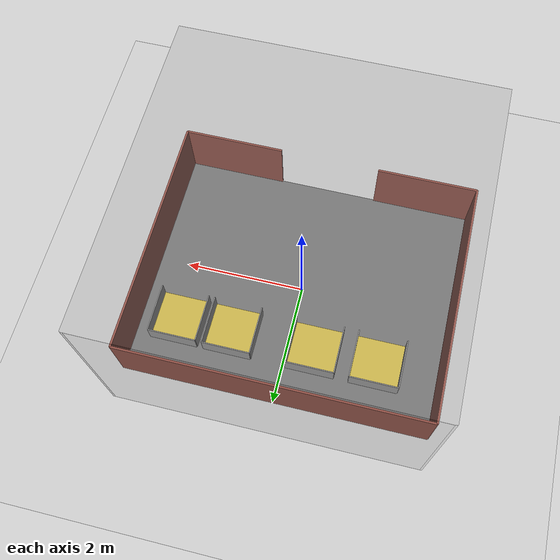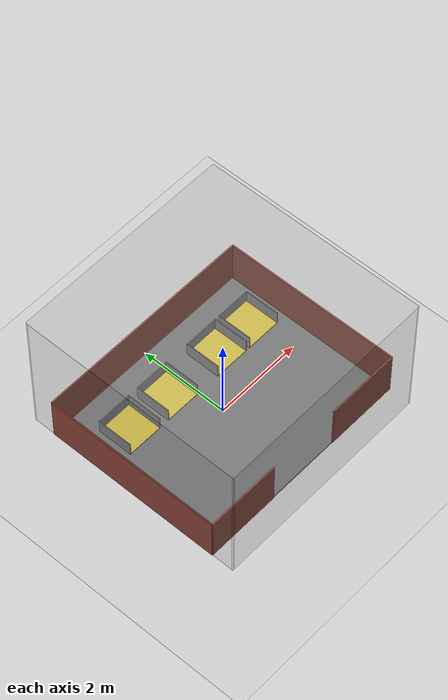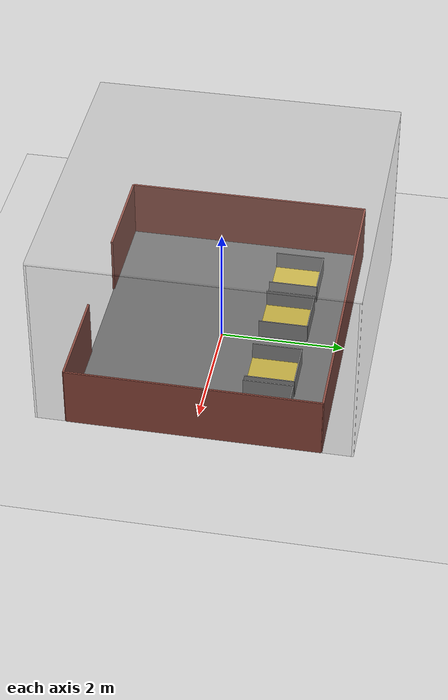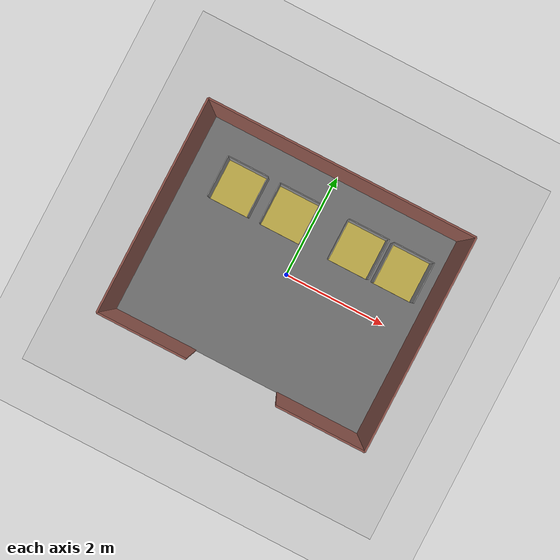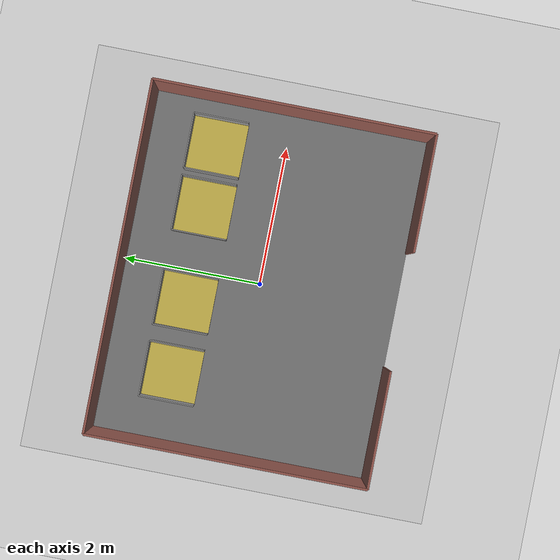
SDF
<sdf version="1.10">
 <world name="default">
  <physics name="1ms" type="ignored">
   <max_step_size>0.001</max_step_size>
   <real_time_factor>1</real_time_factor>
   <real_time_update_rate>1000</real_time_update_rate>
  </physics>
  <plugin name="gz::sim::systems::Buoyancy" filename="gz-sim-buoyancy-system">
   <uniform_fluid_density>0</uniform_fluid_density>
  </plugin>
  <plugin name="gz::sim::systems::Physics" filename="gz-sim-physics-system"/>
  <plugin name="gz::sim::systems::UserCommands" filename="gz-sim-user-commands-system"/>
  <plugin name="gz::sim::systems::SceneBroadcaster" filename="gz-sim-scene-broadcaster-system"/>
  <plugin name="gz::sim::systems::Imu" filename="gz-sim-imu-system"/>
  <plugin name="gz::sim::systems::Sensors" filename="gz-sim-sensors-system">
   <render_engine>ogre2</render_engine>
  </plugin>
  <plugin name="gz::sim::systems::Buoyancy" filename="gz-sim-buoyancy-system">
   <uniform_fluid_density>0</uniform_fluid_density>
  </plugin>
  <plugin name="gz::sim::systems::ParticleEmitter" filename="gz-sim-particle-emitter-system"/>
  <plugin name="gz::sim::systems::Contact" filename="gz-sim-contact-system"/>
  <gravity>0 0 -9.8000000000000007</gravity>
  <magnetic_field>5.5644999999999998e-06 2.2875799999999999e-05 -4.2388400000000002e-05</magnetic_field>
  <atmosphere type="adiabatic"/>
  <scene>
   <ambient>0.400000006 0.400000006 0.400000006 1</ambient>
   <background>0.699999988 0.699999988 0.699999988 1</background>
   <shadows>true</shadows>
  </scene>
  <model name="ground_plane">
   <static>true</static>
   <link name="link">
    <collision name="collision">
     <geometry><plane><normal>0 0 1</normal><size>5 5</size></plane></geometry>
    </collision>
    <visual name="visual">
     <geometry><plane><normal>0 0 1</normal><size>5 5</size></plane></geometry>
     <material>
      <ambient>0.800000012 0.800000012 0.800000012 1</ambient>
      <diffuse>0.800000012 0.800000012 0.800000012 1</diffuse>
      <specular>0.800000012 0.800000012 0.800000012 1</specular>
     </material>
    </visual>
    <inertial>
     <mass>1</mass>
     <inertia><ixx>1</ixx><ixy>0</ixy><ixz>0</ixz><iyy>1</iyy><iyz>0</iyz><izz>1</izz></inertia>
    </inertial>
   </link>
  </model>
  <model name="boundary1">
   <pose>0 2.48333 0.5 0 0 0</pose>
   <static>true</static>
   <link name="body">
    <visual name="body_visual">
     <geometry><box><size>5 0.0333333 5</size></box></geometry>
     <material>
      <ambient>1 0.899999976 0.899999976 0.200000003</ambient>
      <diffuse>0.5 0.5 0.5 0.200000003</diffuse>
     </material>
    </visual>
    <collision name="body_collision"><geometry><box><size>5 0.0333333 1.33333</size></box></geometry></collision>
    <inertial>
     <mass>1</mass>
     <inertia><ixx>1</ixx><ixy>0</ixy><ixz>0</ixz><iyy>1</iyy><iyz>0</iyz><izz>1</izz></inertia>
    </inertial>
   </link>
  </model>
  <model name="boundary2">
   <pose>0 -2.48333 0.5 0 0 0</pose>
   <static>true</static>
   <link name="body">
    <visual name="body_visual">
     <geometry><box><size>5 0.0333333 5</size></box></geometry>
     <material>
      <ambient>1 0.899999976 0.899999976 0.200000003</ambient>
      <diffuse>0.5 0.5 0.5 0.200000003</diffuse>
     </material>
    </visual>
    <collision name="body_collision"><geometry><box><size>5 0.0333333 1.33333</size></box></geometry></collision>
    <inertial>
     <mass>1</mass>
     <inertia><ixx>1</ixx><ixy>0</ixy><ixz>0</ixz><iyy>1</iyy><iyz>0</iyz><izz>1</izz></inertia>
    </inertial>
   </link>
  </model>
  <model name="boundary3">
   <pose>2.48333 0 0.5 0 0 0</pose>
   <static>true</static>
   <link name="body">
    <visual name="body_visual">
     <geometry><box><size>0.0333333 5 5</size></box></geometry>
     <material>
      <ambient>1 0.899999976 0.899999976 0.200000003</ambient>
      <diffuse>0.5 0.5 0.5 0.200000003</diffuse>
     </material>
    </visual>
    <collision name="body_collision"><geometry><box><size>0.0333333 5 1.33333</size></box></geometry></collision>
    <inertial>
     <mass>1</mass>
     <inertia><ixx>1</ixx><ixy>0</ixy><ixz>0</ixz><iyy>1</iyy><iyz>0</iyz><izz>1</izz></inertia>
    </inertial>
   </link>
  </model>
  <model name="boundary4">
   <pose>-2.48333 0 0.5 0 0 0</pose>
   <static>true</static>
   <link name="body">
    <visual name="body_visual">
     <geometry><box><size>0.0333333 5 5</size></box></geometry>
     <material>
      <ambient>1 0.899999976 0.899999976 0.200000003</ambient>
      <diffuse>0.5 0.5 0.5 0.200000003</diffuse>
     </material>
    </visual>
    <collision name="body_collision"><geometry><box><size>0.0333333 5 1.33333</size></box></geometry></collision>
    <inertial>
     <mass>1</mass>
     <inertia><ixx>1</ixx><ixy>0</ixy><ixz>0</ixz><iyy>1</iyy><iyz>0</iyz><izz>1</izz></inertia>
    </inertial>
   </link>
  </model>
  <model name="ceiling">
   <pose>0 0 3 0 0 0</pose>
   <static>true</static>
   <link name="body">
    <visual name="body_visual">
     <geometry><box><size>5 5 0.0333333</size></box></geometry>
     <material>
      <ambient>1 0.899999976 0.899999976 0.200000003</ambient>
      <diffuse>0.5 0.5 0.5 0.200000003</diffuse>
     </material>
    </visual>
    <collision name="body_collision"><geometry><box><size>5 5 0.0333333</size></box></geometry></collision>
    <inertial>
     <mass>1</mass>
     <inertia><ixx>1</ixx><ixy>0</ixy><ixz>0</ixz><iyy>1</iyy><iyz>0</iyz><izz>1</izz></inertia>
    </inertial>
   </link>
  </model>
  <model name="barn">
   <static>true</static>
   <link name="floor">
    <collision name="floor_coll">
     <geometry><box><size>5 4 0.0333333</size></box></geometry>
     <surface><friction><ode><mu>1</mu><mu2>1</mu2></ode></friction></surface>
    </collision>
    <visual name="floor_vis">
     <geometry><box><size>5 4 0.0333333</size></box></geometry>
     <material>
      <ambient>0.35 0.35 0.35 1</ambient>
      <diffuse>0.45 0.45 0.45 1</diffuse>
      <specular>0.2 0.2 0.2 1</specular>
      <emissive>0 0 0 1</emissive>
     </material>
    </visual>
    <inertial>
     <mass>1</mass>
     <inertia><ixx>1</ixx><ixy>0</ixy><ixz>0</ixz><iyy>1</iyy><iyz>0</iyz><izz>1</izz></inertia>
    </inertial>
   </link>
   <link name="wall_w">
    <pose>-2.5 0 0.5 0 0 0</pose>
    <collision name="c"><geometry><box><size>0.0333333 4 1</size></box></geometry></collision>
    <visual name="v">
     <geometry><box><size>0.0333333 4 1</size></box></geometry>
     <material>
      <ambient>0.45 0.25 0.2 1</ambient>
      <diffuse>0.6 0.3 0.25 1</diffuse>
      <specular>0.2 0.2 0.2 1</specular>
      <emissive>0 0 0 1</emissive>
     </material>
    </visual>
    <inertial>
     <mass>1</mass>
     <inertia><ixx>1</ixx><ixy>0</ixy><ixz>0</ixz><iyy>1</iyy><iyz>0</iyz><izz>1</izz></inertia>
    </inertial>
   </link>
   <link name="wall_e">
    <pose>2.5 0 0.5 0 0 0</pose>
    <collision name="c"><geometry><box><size>0.0333333 4 1</size></box></geometry></collision>
    <visual name="v">
     <geometry><box><size>0.0333333 4 1</size></box></geometry>
     <material>
      <ambient>0.45 0.25 0.2 1</ambient>
      <diffuse>0.6 0.3 0.25 1</diffuse>
      <specular>0.2 0.2 0.2 1</specular>
      <emissive>0 0 0 1</emissive>
     </material>
    </visual>
    <inertial>
     <mass>1</mass>
     <inertia><ixx>1</ixx><ixy>0</ixy><ixz>0</ixz><iyy>1</iyy><iyz>0</iyz><izz>1</izz></inertia>
    </inertial>
   </link>
   <model name="south_wall">
    <static>true</static>
    <link name="sw_left">
     <pose>-1.66667 -2 0.5 0 0 0</pose>
     <collision name="c"><geometry><box><size>1.66667 0.0333333 1</size></box></geometry></collision>
     <visual name="v">
      <geometry><box><size>1.66667 0.0333333 1</size></box></geometry>
      <material>
       <ambient>0.45 0.25 0.2 1</ambient>
       <diffuse>0.6 0.3 0.25 1</diffuse>
       <specular>0.2 0.2 0.2 1</specular>
       <emissive>0 0 0 1</emissive>
      </material>
     </visual>
    </link>
    <link name="sw_right">
     <pose>1.66667 -2 0.5 0 0 0</pose>
     <collision name="c"><geometry><box><size>1.66667 0.0333333 1</size></box></geometry></collision>
     <visual name="v">
      <geometry><box><size>1.66667 0.0333333 1</size></box></geometry>
      <material>
       <ambient>0.45 0.25 0.2 1</ambient>
       <diffuse>0.6 0.3 0.25 1</diffuse>
       <specular>0.2 0.2 0.2 1</specular>
       <emissive>0 0 0 1</emissive>
      </material>
     </visual>
    </link>
   </model>
   <link name="wall_n">
    <pose>0 2 0.5 0 0 0</pose>
    <collision name="c"><geometry><box><size>5 0.0333333 1</size></box></geometry></collision>
    <visual name="v">
     <geometry><box><size>5 0.0333333 1</size></box></geometry>
     <material>
      <ambient>0.45 0.25 0.2 1</ambient>
      <diffuse>0.6 0.3 0.25 1</diffuse>
      <specular>0.2 0.2 0.2 1</specular>
      <emissive>0 0 0 1</emissive>
     </material>
    </visual>
    <inertial>
     <mass>1</mass>
     <inertia><ixx>1</ixx><ixy>0</ixy><ixz>0</ixz><iyy>1</iyy><iyz>0</iyz><izz>1</izz></inertia>
    </inertial>
   </link>
  </model>
  <model name="cubicle_dry_1">
   <static>true</static>
   <pose>-1.49765 1.00137 0 0 0 0</pose>
   <link name="bedding">
    <pose>0 0 0.02 0 0 0</pose>
    <collision name="c">
     <geometry><box><size>0.8 0.8 0.04</size></box></geometry>
     <surface><friction><ode><mu>0.80000000000000004</mu><mu2>0.80000000000000004</mu2></ode></friction></surface>
    </collision>
    <visual name="v">
     <geometry><box><size>0.8 0.8 0.04</size></box></geometry>
     <material><ambient>0.850000024 0.75 0.25 1</ambient><diffuse>0.850000024 0.75 0.25 1</diffuse></material>
    </visual>
    <inertial>
     <mass>1</mass>
     <inertia><ixx>1</ixx><ixy>0</ixy><ixz>0</ixz><iyy>1</iyy><iyz>0</iyz><izz>1</izz></inertia>
    </inertial>
   </link>
   <link name="rail_left">
    <pose>-0.4 0 0.166667 0 0 0</pose>
    <collision name="c"><geometry><box><size>0.0166667 0.8 0.333333</size></box></geometry></collision>
    <visual name="v">
     <geometry><box><size>0.0166667 0.8 0.333333</size></box></geometry>
     <material>
      <ambient>0.5 0.5 0.5 1</ambient>
      <diffuse>0.6 0.6 0.6 1</diffuse>
      <specular>0.8 0.8 0.8 1</specular>
      <emissive>0 0 0 1</emissive>
     </material>
    </visual>
    <inertial>
     <mass>1</mass>
     <inertia><ixx>1</ixx><ixy>0</ixy><ixz>0</ixz><iyy>1</iyy><iyz>0</iyz><izz>1</izz></inertia>
    </inertial>
   </link>
   <link name="rail_right">
    <pose>0.4 0 0.166667 0 0 0</pose>
    <collision name="c"><geometry><box><size>0.0166667 0.8 0.333333</size></box></geometry></collision>
    <visual name="v">
     <geometry><box><size>0.0166667 0.8 0.333333</size></box></geometry>
     <material>
      <ambient>0.5 0.5 0.5 1</ambient>
      <diffuse>0.6 0.6 0.6 1</diffuse>
      <specular>0.8 0.8 0.8 1</specular>
      <emissive>0 0 0 1</emissive>
     </material>
    </visual>
    <inertial>
     <mass>1</mass>
     <inertia><ixx>1</ixx><ixy>0</ixy><ixz>0</ixz><iyy>1</iyy><iyz>0</iyz><izz>1</izz></inertia>
    </inertial>
   </link>
   <link name="rail_head">
    <pose>0 0.4 0.166667 0 0 0</pose>
    <collision name="c"><geometry><box><size>0.8 0.0166667 0.333333</size></box></geometry></collision>
    <visual name="v">
     <geometry><box><size>0.8 0.0166667 0.333333</size></box></geometry>
     <material>
      <ambient>0.5 0.5 0.5 1</ambient>
      <diffuse>0.6 0.6 0.6 1</diffuse>
      <specular>0.8 0.8 0.8 1</specular>
      <emissive>0 0 0 1</emissive>
     </material>
    </visual>
    <inertial>
     <mass>1</mass>
     <inertia><ixx>1</ixx><ixy>0</ixy><ixz>0</ixz><iyy>1</iyy><iyz>0</iyz><izz>1</izz></inertia>
    </inertial>
   </link>
  </model>
  <model name="cubicle_dry_2">
   <static>true</static>
   <pose>-0.454547 1.00164 0 0 0 0</pose>
   <link name="bedding">
    <pose>0 0 0.02 0 0 0</pose>
    <collision name="c">
     <geometry><box><size>0.8 0.8 0.04</size></box></geometry>
     <surface><friction><ode><mu>0.80000000000000004</mu><mu2>0.80000000000000004</mu2></ode></friction></surface>
    </collision>
    <visual name="v">
     <geometry><box><size>0.8 0.8 0.04</size></box></geometry>
     <material><ambient>0.850000024 0.75 0.25 1</ambient><diffuse>0.850000024 0.75 0.25 1</diffuse></material>
    </visual>
    <inertial>
     <mass>1</mass>
     <inertia><ixx>1</ixx><ixy>0</ixy><ixz>0</ixz><iyy>1</iyy><iyz>0</iyz><izz>1</izz></inertia>
    </inertial>
   </link>
   <link name="rail_left">
    <pose>-0.4 0 0.166667 0 0 0</pose>
    <collision name="c"><geometry><box><size>0.0166667 0.8 0.333333</size></box></geometry></collision>
    <visual name="v">
     <geometry><box><size>0.0166667 0.8 0.333333</size></box></geometry>
     <material>
      <ambient>0.5 0.5 0.5 1</ambient>
      <diffuse>0.6 0.6 0.6 1</diffuse>
      <specular>0.8 0.8 0.8 1</specular>
      <emissive>0 0 0 1</emissive>
     </material>
    </visual>
    <inertial>
     <mass>1</mass>
     <inertia><ixx>1</ixx><ixy>0</ixy><ixz>0</ixz><iyy>1</iyy><iyz>0</iyz><izz>1</izz></inertia>
    </inertial>
   </link>
   <link name="rail_right">
    <pose>0.4 0 0.166667 0 0 0</pose>
    <collision name="c"><geometry><box><size>0.0166667 0.8 0.333333</size></box></geometry></collision>
    <visual name="v">
     <geometry><box><size>0.0166667 0.8 0.333333</size></box></geometry>
     <material>
      <ambient>0.5 0.5 0.5 1</ambient>
      <diffuse>0.6 0.6 0.6 1</diffuse>
      <specular>0.8 0.8 0.8 1</specular>
      <emissive>0 0 0 1</emissive>
     </material>
    </visual>
    <inertial>
     <mass>1</mass>
     <inertia><ixx>1</ixx><ixy>0</ixy><ixz>0</ixz><iyy>1</iyy><iyz>0</iyz><izz>1</izz></inertia>
    </inertial>
   </link>
   <link name="rail_head">
    <pose>0 0.4 0.166667 0 0 0</pose>
    <collision name="c"><geometry><box><size>0.8 0.0166667 0.333333</size></box></geometry></collision>
    <visual name="v">
     <geometry><box><size>0.8 0.0166667 0.333333</size></box></geometry>
     <material>
      <ambient>0.5 0.5 0.5 1</ambient>
      <diffuse>0.6 0.6 0.6 1</diffuse>
      <specular>0.8 0.8 0.8 1</specular>
      <emissive>0 0 0 1</emissive>
     </material>
    </visual>
    <inertial>
     <mass>1</mass>
     <inertia><ixx>1</ixx><ixy>0</ixy><ixz>0</ixz><iyy>1</iyy><iyz>0</iyz><izz>1</izz></inertia>
    </inertial>
   </link>
  </model>
  <model name="cubicle_dry_3">
   <static>true</static>
   <pose>0.928767 0.999433 0 0 0 0</pose>
   <link name="bedding">
    <pose>0 0 0.02 0 0 0</pose>
    <collision name="c">
     <geometry><box><size>0.8 0.8 0.04</size></box></geometry>
     <surface><friction><ode><mu>0.80000000000000004</mu><mu2>0.80000000000000004</mu2></ode></friction></surface>
    </collision>
    <visual name="v">
     <geometry><box><size>0.8 0.8 0.04</size></box></geometry>
     <material><ambient>0.850000024 0.75 0.25 1</ambient><diffuse>0.850000024 0.75 0.25 1</diffuse></material>
    </visual>
    <inertial>
     <mass>1</mass>
     <inertia><ixx>1</ixx><ixy>0</ixy><ixz>0</ixz><iyy>1</iyy><iyz>0</iyz><izz>1</izz></inertia>
    </inertial>
   </link>
   <link name="rail_left">
    <pose>-0.4 0 0.166667 0 0 0</pose>
    <collision name="c"><geometry><box><size>0.0166667 0.8 0.333333</size></box></geometry></collision>
    <visual name="v">
     <geometry><box><size>0.0166667 0.8 0.333333</size></box></geometry>
     <material>
      <ambient>0.5 0.5 0.5 1</ambient>
      <diffuse>0.6 0.6 0.6 1</diffuse>
      <specular>0.8 0.8 0.8 1</specular>
      <emissive>0 0 0 1</emissive>
     </material>
    </visual>
    <inertial>
     <mass>1</mass>
     <inertia><ixx>1</ixx><ixy>0</ixy><ixz>0</ixz><iyy>1</iyy><iyz>0</iyz><izz>1</izz></inertia>
    </inertial>
   </link>
   <link name="rail_right">
    <pose>0.4 0 0.166667 0 0 0</pose>
    <collision name="c"><geometry><box><size>0.0166667 0.8 0.333333</size></box></geometry></collision>
    <visual name="v">
     <geometry><box><size>0.0166667 0.8 0.333333</size></box></geometry>
     <material>
      <ambient>0.5 0.5 0.5 1</ambient>
      <diffuse>0.6 0.6 0.6 1</diffuse>
      <specular>0.8 0.8 0.8 1</specular>
      <emissive>0 0 0 1</emissive>
     </material>
    </visual>
    <inertial>
     <mass>1</mass>
     <inertia><ixx>1</ixx><ixy>0</ixy><ixz>0</ixz><iyy>1</iyy><iyz>0</iyz><izz>1</izz></inertia>
    </inertial>
   </link>
   <link name="rail_head">
    <pose>0 0.4 0.166667 0 0 0</pose>
    <collision name="c"><geometry><box><size>0.8 0.0166667 0.333333</size></box></geometry></collision>
    <visual name="v">
     <geometry><box><size>0.8 0.0166667 0.333333</size></box></geometry>
     <material>
      <ambient>0.5 0.5 0.5 1</ambient>
      <diffuse>0.6 0.6 0.6 1</diffuse>
      <specular>0.8 0.8 0.8 1</specular>
      <emissive>0 0 0 1</emissive>
     </material>
    </visual>
    <inertial>
     <mass>1</mass>
     <inertia><ixx>1</ixx><ixy>0</ixy><ixz>0</ixz><iyy>1</iyy><iyz>0</iyz><izz>1</izz></inertia>
    </inertial>
   </link>
  </model>
  <model name="cubicle_dry_4">
   <static>true</static>
   <pose>1.83288 0.998167 0 0 0 0</pose>
   <link name="bedding">
    <pose>0 0 0.02 0 0 0</pose>
    <collision name="c">
     <geometry><box><size>0.8 0.8 0.04</size></box></geometry>
     <surface><friction><ode><mu>0.80000000000000004</mu><mu2>0.80000000000000004</mu2></ode></friction></surface>
    </collision>
    <visual name="v">
     <geometry><box><size>0.8 0.8 0.04</size></box></geometry>
     <material><ambient>0.850000024 0.75 0.25 1</ambient><diffuse>0.850000024 0.75 0.25 1</diffuse></material>
    </visual>
    <inertial>
     <mass>1</mass>
     <inertia><ixx>1</ixx><ixy>0</ixy><ixz>0</ixz><iyy>1</iyy><iyz>0</iyz><izz>1</izz></inertia>
    </inertial>
   </link>
   <link name="rail_left">
    <pose>-0.4 0 0.166667 0 0 0</pose>
    <collision name="c"><geometry><box><size>0.0166667 0.8 0.333333</size></box></geometry></collision>
    <visual name="v">
     <geometry><box><size>0.0166667 0.8 0.333333</size></box></geometry>
     <material>
      <ambient>0.5 0.5 0.5 1</ambient>
      <diffuse>0.6 0.6 0.6 1</diffuse>
      <specular>0.8 0.8 0.8 1</specular>
      <emissive>0 0 0 1</emissive>
     </material>
    </visual>
    <inertial>
     <mass>1</mass>
     <inertia><ixx>1</ixx><ixy>0</ixy><ixz>0</ixz><iyy>1</iyy><iyz>0</iyz><izz>1</izz></inertia>
    </inertial>
   </link>
   <link name="rail_right">
    <pose>0.4 0 0.166667 0 0 0</pose>
    <collision name="c"><geometry><box><size>0.0166667 0.8 0.333333</size></box></geometry></collision>
    <visual name="v">
     <geometry><box><size>0.0166667 0.8 0.333333</size></box></geometry>
     <material>
      <ambient>0.5 0.5 0.5 1</ambient>
      <diffuse>0.6 0.6 0.6 1</diffuse>
      <specular>0.8 0.8 0.8 1</specular>
      <emissive>0 0 0 1</emissive>
     </material>
    </visual>
    <inertial>
     <mass>1</mass>
     <inertia><ixx>1</ixx><ixy>0</ixy><ixz>0</ixz><iyy>1</iyy><iyz>0</iyz><izz>1</izz></inertia>
    </inertial>
   </link>
   <link name="rail_head">
    <pose>0 0.4 0.166667 0 0 0</pose>
    <collision name="c"><geometry><box><size>0.8 0.0166667 0.333333</size></box></geometry></collision>
    <visual name="v">
     <geometry><box><size>0.8 0.0166667 0.333333</size></box></geometry>
     <material>
      <ambient>0.5 0.5 0.5 1</ambient>
      <diffuse>0.6 0.6 0.6 1</diffuse>
      <specular>0.8 0.8 0.8 1</specular>
      <emissive>0 0 0 1</emissive>
     </material>
    </visual>
    <inertial>
     <mass>1</mass>
     <inertia><ixx>1</ixx><ixy>0</ixy><ixz>0</ixz><iyy>1</iyy><iyz>0</iyz><izz>1</izz></inertia>
    </inertial>
   </link>
  </model>
  <light name="sun" type="directional">
   <pose>0 0 3.33333 0 0 0</pose>
   <intensity>1</intensity>
   <direction>-0.5 0.10000000000000001 -0.90000000000000002</direction>
   <diffuse>0.800000012 0.800000012 0.800000012 1</diffuse>
   <specular>0.200000003 0.200000003 0.200000003 1</specular>
   <attenuation>
    <range>1000</range>
    <linear>0.01</linear>
    <constant>0.90000000000000002</constant>
    <quadratic>0.001</quadratic>
   </attenuation>
   <spot><inner_angle>0</inner_angle><outer_angle>0</outer_angle><falloff>0</falloff></spot>
  </light>
  <light name="indoor_fill" type="point">
   <pose>0 0 1.06667 0 0 0</pose>
   <cast_shadows>false</cast_shadows>
   <intensity>1</intensity>
   <direction>0 0 -1</direction>
   <diffuse>0.899999976 0.899999976 0.899999976 1</diffuse>
   <specular>0.100000001 0.100000001 0.100000001 1</specular>
   <attenuation>
    <range>20</range>
    <linear>0.01</linear>
    <constant>0.90000000000000002</constant>
    <quadratic>0.001</quadratic>
   </attenuation>
   <spot><inner_angle>0</inner_angle><outer_angle>0</outer_angle><falloff>0</falloff></spot>
  </light>
 </world>
</sdf>
